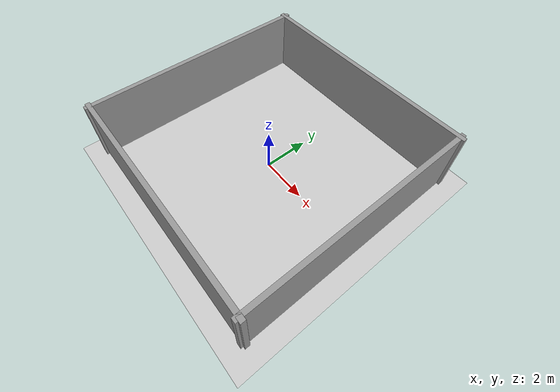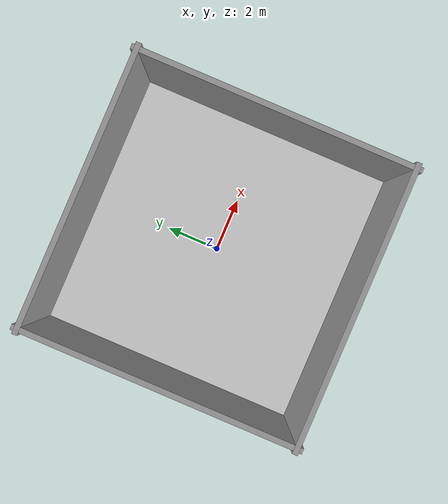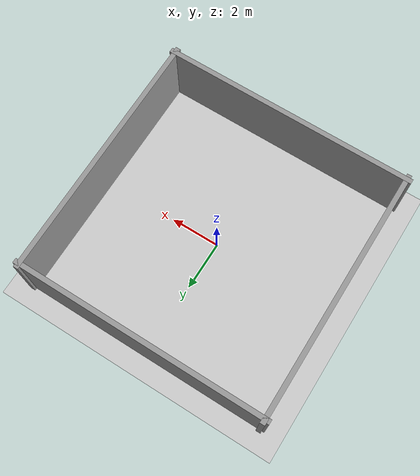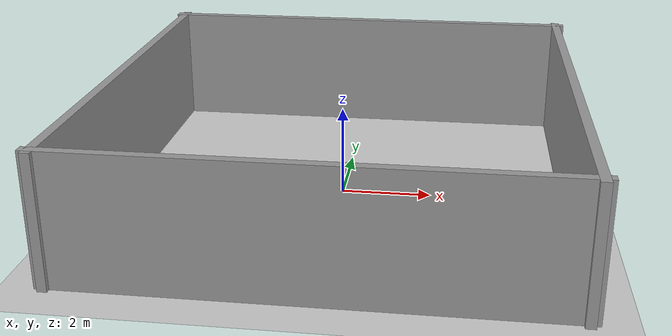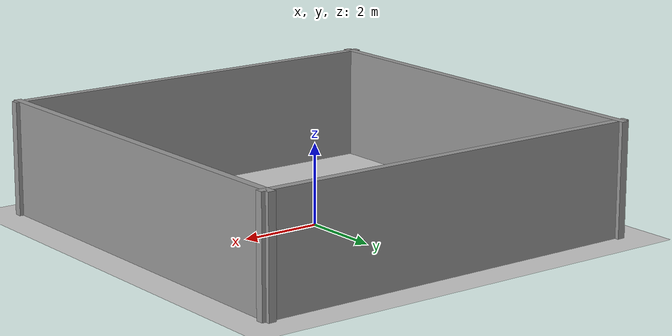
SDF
<sdf version="1.7">
 <world name="indoor_scene">
  <light name="sun" type="directional">
   <pose>0 0 10 0 0 0</pose>
   <diffuse>0.8 0.8 0.8 1</diffuse>
   <specular>0.2 0.2 0.2 1</specular>
   <direction>0.3 -0.3 -1</direction>
   <attenuation><range>30</range></attenuation>
  </light>
  <include><uri>model://ground_plane</uri></include>
  <model name="wall_north">
   <static>true</static>
   <pose>0 5 1.4 0 0 0</pose>
   <link name="link">
    <collision name="collision"><geometry><box><size>10.4 0.2 2.8</size></box></geometry></collision>
    <visual name="visual">
     <cast_shadows>false</cast_shadows>
     <geometry><box><size>10.4 0.2 2.8</size></box></geometry>
     <material>
      <script>
       <uri>model://grey_wall/materials/scripts</uri>
       <uri>model://grey_wall/materials/textures</uri>
       <name>vrc/grey_wall</name>
      </script>
     </material>
    </visual>
   </link>
  </model>
  <model name="wall_south">
   <static>true</static>
   <pose>0 -5 1.4 0 0 0</pose>
   <link name="link">
    <collision name="collision"><geometry><box><size>10.4 0.2 2.8</size></box></geometry></collision>
    <visual name="visual">
     <cast_shadows>false</cast_shadows>
     <geometry><box><size>10.4 0.2 2.8</size></box></geometry>
     <material>
      <script>
       <uri>model://grey_wall/materials/scripts</uri>
       <uri>model://grey_wall/materials/textures</uri>
       <name>vrc/grey_wall</name>
      </script>
     </material>
    </visual>
   </link>
  </model>
  <model name="wall_east">
   <static>true</static>
   <pose>5 0 1.4 0 0 1.5708</pose>
   <link name="link">
    <collision name="collision"><geometry><box><size>10.4 0.2 2.8</size></box></geometry></collision>
    <visual name="visual">
     <cast_shadows>false</cast_shadows>
     <geometry><box><size>10.4 0.2 2.8</size></box></geometry>
     <material>
      <script>
       <uri>model://grey_wall/materials/scripts</uri>
       <uri>model://grey_wall/materials/textures</uri>
       <name>vrc/grey_wall</name>
      </script>
     </material>
    </visual>
   </link>
  </model>
  <model name="wall_west">
   <static>true</static>
   <pose>-5 0 1.4 0 0 1.5708</pose>
   <link name="link">
    <collision name="collision"><geometry><box><size>10.4 0.2 2.8</size></box></geometry></collision>
    <visual name="visual">
     <cast_shadows>false</cast_shadows>
     <geometry><box><size>10.4 0.2 2.8</size></box></geometry>
     <material>
      <script>
       <uri>model://grey_wall/materials/scripts</uri>
       <uri>model://grey_wall/materials/textures</uri>
       <name>vrc/grey_wall</name>
      </script>
     </material>
    </visual>
   </link>
  </model>
  <physics type="ode">
   <real_time_update_rate>1000</real_time_update_rate>
   <max_step_size>0.001</max_step_size>
   <gravity>0 0 -9.81</gravity>
  </physics>
 </world>
</sdf>
